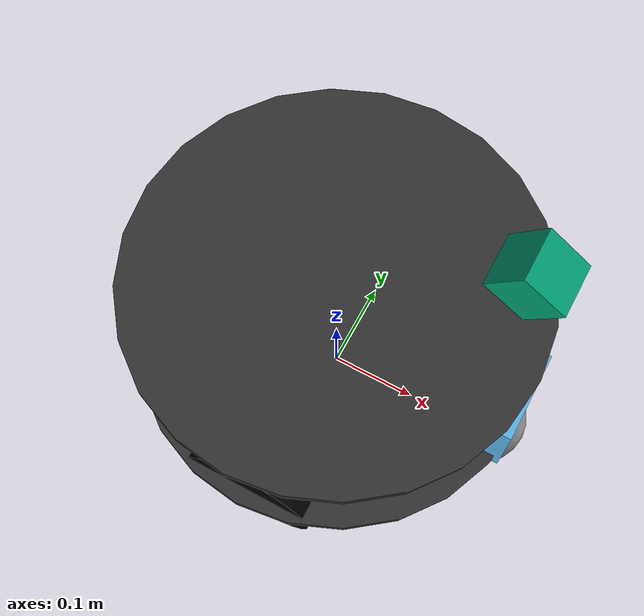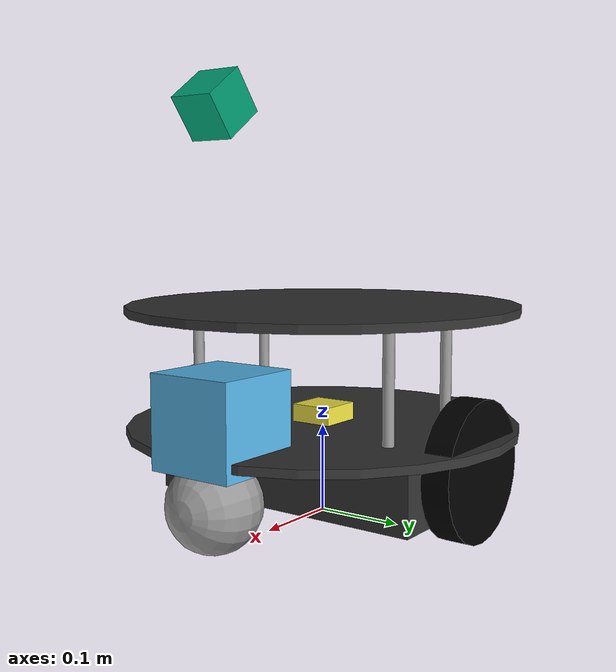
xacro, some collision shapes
<?xml version="1.0"?>
<robot name="arlobot" xmlns:xacro="http://ros.org/wiki/xacro">

  <xacro:property name="M_PI" value="3.1415926535897931"/>

  <!-- Loading config for arlo and all sensors -->

  <xacro:include filename="$(find Simulation)/urdf/camera.urdf.xacro"/>
  <xacro:include filename="$(find Simulation)/urdf/lidar.urdf.xacro"/>
  <xacro:include filename="$(find Simulation)/urdf/imu.urdf.xacro"/>
  <xacro:include filename="$(find Simulation)/urdf/arlo_stack.urdf.xacro"/>

  <!-- ArloBot -->
  <xacro:arlobot/>

  <!--sensor init define parent frame here-->
  <xacro:lidar parent="base_link"/>
  <xacro:camera parent="base_link"/>
  <xacro:imu parent="base_link"/>

  <!-- sensor/actor plugins init -->
  <xacro:include filename="$(find Simulation)/urdf/arlobot.gazebo"/>

  <!--adding one additional plate-->
  <xacro:stack_circles parent="base_link"/>

</robot>

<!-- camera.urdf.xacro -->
<robot xmlns:xacro="http://ros.org/wiki/xacro">

	<xacro:property name="camera_angle" value="${45 *180/M_PI}" /><!--angle measured from horizontal downwards-->
	<xacro:property name="camera_hight" value="${0.45-0.10125}" /><!--since this is relative to the base_link we have to substract 0.10125 from the hight we want-->
	<xacro:property name="camera_xoffset" value="0.18" />

	<xacro:macro name="camera" params="parent">

		<!-- Camera -->
		<link name="camera_link">
			<collision>
				<origin xyz="0 0 0" rpy="0 0 0"/>
			    <geometry>
					<box size="0.05 0.05 0.05"/>
			  	</geometry>
			</collision>
			<visual>
			    <origin xyz="0 0 0" rpy="0 0 0"/>
			    <geometry>
					<box size="0.05 0.05 0.05"/>
			    </geometry>
			</visual>
			<inertial>
			    <mass value="1e-5" />
			    <origin xyz="0 0 0" rpy="0 0 0"/>
			    <inertia ixx="1e-6" ixy="0" ixz="0" iyy="1e-6" iyz="0" izz="1e-6" />
			</inertial>
		</link>

		<joint name="camera_joint" type="fixed">
			<axis xyz="0 1 0" />
		    <origin xyz="${camera_xoffset} 0 ${camera_hight}" rpy="0 ${camera_angle} 0"/>
		    <parent link="${parent}"/>
		    <child link="camera_link"/>
		</joint>
	</xacro:macro>

</robot>

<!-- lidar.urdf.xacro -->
<robot xmlns:xacro="http://ros.org/wiki/xacro">

	<xacro:property name="lidar_xoffset" value="0.175" />
	<xacro:property name="lidar_yoffset" value="0" />
	<xacro:property name="lidar_zoffset" value="${0+0.035}" /> <!--since we want it to be on top of the baseplate-->

	<xacro:property name="camera_xoffset" value="0.18" />

	<xacro:macro name="lidar" params="parent">
		<link name="hokuyo_link">

		  <collision>
		    <origin xyz="0 0 0" rpy="0 0 0"/>
		    <geometry>
		      <box size="0.1 0.1 0.1"/>
		    </geometry>
		  </collision>

		  <visual>
		    <origin xyz="0 0 0" rpy="0 0 0"/>
		    <geometry>
		      <mesh filename="package://Simulation/meshes/hokuyo.dae"/>
		    </geometry>
		  </visual>

		  <inertial>
		    <mass value="1e-5" />
		    <origin xyz="0 0 0" rpy="0 0 0"/>
		    <inertia ixx="1e-6" ixy="0" ixz="0" iyy="1e-6" iyz="0" izz="1e-6" />
		  </inertial>

		</link>

		<joint name="hokuyo_joint" type="fixed">
		  <axis xyz="0 0 0" />
		  <origin xyz="${lidar_xoffset} ${lidar_yoffset} ${lidar_zoffset}" rpy="0 0 0"/>
		  <parent link="${parent}"/>
		  <child link="hokuyo_link"/>
		</joint>
    </xacro:macro>

</robot>

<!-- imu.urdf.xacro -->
<robot xmlns:xacro="http://ros.org/wiki/xacro">

	<xacro:property name="imu_xoffset" value="0" />
	<xacro:property name="imu_yoffset" value="0" />
	<xacro:property name="imu_zoffset" value="0" />

	<xacro:macro name="imu" params="parent">
	  	<link name="imu_link">

	      <collision>
	        <origin xyz="0 0 0" rpy="0 0 0"/>
	        <geometry>
	          <box size="0.1 0.1 0.1"/>
	        </geometry>
	      </collision>

	      <visual>
	        <origin xyz="0 0 0" rpy="0 0 0"/>
	        <geometry>
	          <box size="0.05 0.05 0.05"/>
	        </geometry>
	      </visual>

	      <inertial>
	        <mass value="1e-5" />
	        <origin xyz="0 0 0" rpy="0 0 0"/>
	        <inertia ixx="1e-6" ixy="0" ixz="0" iyy="1e-6" iyz="0" izz="1e-6" />
	      </inertial>

	    </link>

	    <joint name="imu_joint" type="fixed">
	      <axis xyz="0 0 0" />
	      <origin xyz="${imu_xoffset} ${imu_yoffset} ${imu_zoffset}" rpy="0 0 0"/>
	      <parent link="${parent}"/>
	      <child link="imu_link"/>
	    </joint>
    </xacro:macro>

</robot>

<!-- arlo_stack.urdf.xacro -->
<robot name="arlobot_hardware" xmlns:xacro="http://ros.org/wiki/xacro">

  <!-- Macro for ArloBot body. -->

  <xacro:property name="base_x" value="0.33"/>
  <xacro:property name="base_y" value="0.33"/>

  <xacro:macro name="arlobot">
    <material name="black">
      <color rgba="0.0 0.0 0.0 1.0"/>
    </material>
    <material name="Green">
      <color rgba="0.0 0.8 0.0 1.0"/>
    </material>
    <material name="veryDarkGrey">
      <color rgba=".2 .2 .2 1"/>
    </material>
    <material name="light_grey">
      <color rgba="0.6 0.6 0.6 1"/>
    </material>

    <!-- base_footprint is a fictitious link(frame) that is on the ground right below base_link origin, navigation stack depends on this frame -->
    <link name="base_footprint">
      <visual>
        <origin xyz="0 0 0" rpy="0 0 0"/>
        <geometry>
          <box size="0.001 0.001 0.001"/>
        </geometry>
        <material name="Green"/>
      </visual>

      <collision>
        <origin xyz="0 0 0.017" rpy="0 0 0"/>
        <geometry>
          <box size="0.001 0.001 0.001"/>
        </geometry>
      </collision>
    </link>

    <link name="base_link">
      <inertial>
        <mass value="2"/>
        <origin xyz="0 0 0.0"/>
        <inertia ixx="0.01" ixy="0.0" ixz="0.0"
                 iyy="0.01" iyz="0.0" izz="0.5"/>
      </inertial>

      <visual>
        <origin xyz="0 0 0" rpy="0 0 0"/>
        <geometry>
          <cylinder length="0.0095" radius="0.2245"/>
        </geometry>
        <material name="veryDarkGrey"/>
      </visual>

      <collision>
        <origin xyz="0 0 0" rpy="0 0 0"/>
        <geometry>
          <cylinder length="0.0095" radius="0.2245"/>
        </geometry>
      </collision>
    </link>

    <link name="battery_box">
      <inertial>
        <mass value="0.001"/>
        <origin xyz="0 0 0"/>
        <inertia ixx="0.0001" ixy="0.0" ixz="0.0"
                 iyy="0.0001" iyz="0.0"
                 izz="0.0001"/>
      </inertial>

      <visual>
        <origin xyz="0 0 0" rpy="0 0 0"/>
        <geometry>
          <box size="0.1778 0.3366 0.0762"/>
        </geometry>
        <material name="veryDarkGrey"/>
      </visual>

      <collision>
        <origin xyz="0 0 0" rpy="0 0 0"/>
        <geometry>
          <box size="0.1778 0.3366 0.0762"/>
        </geometry>
      </collision>
    </link>

    <joint name="battery_box_joint" type="fixed">
      <origin xyz="0 0 -0.04285" rpy="0 0 0"/>
      <parent link="base_link"/>
      <child link="battery_box"/>
    </joint>

    <link name="front_caster">
      <inertial>
        <mass value="0.001"/>
        <origin xyz="0 0 0"/>
        <inertia ixx="0.0001" ixy="0.0" ixz="0.0"
                 iyy="0.0001" iyz="0.0"
                 izz="0.0001"/>
      </inertial>

      <visual>

        <origin xyz="0 0.02 0.050625" rpy="${-M_PI/2} 0 ${M_PI/2}"/>
        <geometry>
          <mesh filename="package://Simulation/meshes/28971-Caster-Wheel-Kit-v1.0_simplified.stl"/>
        </geometry>
        <material name="light_grey">
          <color rgba="0.6 0.6 0.6 1"/>
        </material>
      </visual>
      <collision>
        <origin xyz="0 0.02 0" rpy="${-M_PI/2} 0 ${M_PI/2}"/>
        <geometry>
    	  <sphere radius="0.050625"/>
        </geometry>
        <material name="light_grey">
          <color rgba="0.6 0.6 0.6 1"/>
        </material>

      </collision>
    </link>

    <joint name="front_caster_joint" type="continuous">
      <axis xyz="0 0 1" rpy="0 0 0" />
      <origin xyz="0.18745 -0.02 -0.050625" rpy="0 0 0"/>
      <parent link="base_link"/>
      <child link="front_caster"/>
    </joint>

    <link name="rear_caster">
      <inertial>
        <mass value="0.001"/>
        <origin xyz="0 0 0"/>
        <inertia ixx="0.0001" ixy="0.0" ixz="0.0"
                 iyy="0.0001" iyz="0.0"
                 izz="0.0001"/>
      </inertial>

      <visual>

        <origin xyz="0 0.02 0.050625" rpy="${-M_PI/2} 0 ${M_PI/2}"/>
        <geometry>
          <mesh filename="package://Simulation/meshes/28971-Caster-Wheel-Kit-v1.0_simplified.stl"/>
        </geometry>
        <material name="light_grey">
          <color rgba="0.6 0.6 0.6 1"/>
        </material>
      </visual>
      <collision>
        <origin xyz="0 0.02 0" rpy="${-M_PI/2} 0 ${M_PI/2}"/>
        <geometry>
    	  <sphere radius="0.050625"/>
        </geometry>
        <material name="light_grey">
          <color rgba="0.6 0.6 0.6 1"/>
        </material>

      </collision>
    </link>

    <joint name="rear_caster_joint" type="continuous">
      <axis xyz="0 0 1" rpy="0 0 0" />
      <origin xyz="-0.18745 -0.02 -0.050625" rpy="0 0 0"/>
      <parent link="base_link"/>
      <child link="rear_caster"/>
    </joint>

    <joint name="base_footprint_joint" type="fixed">
      <origin xyz="0 0 0.10125" rpy="0 0 0"/>
      <parent link="base_footprint"/>
      <child link="base_link"/>
    </joint>

    <link name="left_axle_link">
      <inertial>
        <origin xyz="0 0 0"/>
        <mass value="0.01"/>
        <inertia ixx="0.001" ixy="0.0" ixz="0.0"
                 iyy="0.001" iyz="0.0" izz="0.001"/>
      </inertial>

      <visual>
        <origin xyz="0 0 0" rpy="0 ${M_PI/2} ${M_PI/2}"/>
        <geometry>
          <cylinder radius="0.00635" length="0.00635"/>
        </geometry>
        <material name="light_grey"/>
      </visual>

      <collision>
        <origin xyz="0 0 0" rpy="0 ${M_PI/2} ${M_PI/2}"/>
        <geometry>
          <cylinder radius="0.00635" length="0.00635"/>
        </geometry>
      </collision>
    </link>

    <joint name="left_axle_joint" type="fixed">
      <origin xyz="0 0.171475 0.0178" rpy="0 0 0"/>
      <parent link="battery_box"/>
      <child link="left_axle_link"/>
      <axis xyz="0 1 0"/>
    </joint>

    <link name="right_axle_link">
      <inertial>
        <origin xyz="0 0 0"/>
        <mass value="0.01"/>
        <inertia ixx="0.001" ixy="0.0" ixz="0.0"
                 iyy="0.001" iyz="0.0" izz="0.001"/>
      </inertial>

      <visual>
        <origin xyz="0 0 0" rpy="0 ${M_PI/2} ${M_PI/2}"/>
        <geometry>
          <cylinder radius="0.00635" length="0.00635"/>
        </geometry>
        <material name="light_grey"/>
      </visual>

      <collision>
        <origin xyz="0 0 0" rpy="0 ${M_PI/2} ${M_PI/2}"/>
        <geometry>
          <cylinder radius="0.00635" length="0.00635"/>
        </geometry>
      </collision>
    </link>

    <joint name="right_axle_joint" type="fixed">
      <origin xyz="0 -0.171475 0.0178" rpy="0 0 0"/>
      <parent link="battery_box"/>
      <child link="right_axle_link"/>
      <axis xyz="0 1 0"/>
    </joint>

    <link name="left_wheel_link">
      <inertial>
        <origin xyz="0 0 0"/>
        <mass value="0.01"/>
        <inertia ixx="0.001" ixy="0.0" ixz="0.0"
                 iyy="0.001" iyz="0.0" izz="0.001"/>
      </inertial>

      <visual>
        <origin xyz="0 0 0" rpy="0 ${M_PI/2} ${M_PI/2}"/>
        <geometry>
          <cylinder radius="0.0762" length="0.03175"/>
        </geometry>
        <material name="black"/>
      </visual>

      <collision>
        <origin xyz="0 0 0" rpy="0 ${M_PI/2} ${M_PI/2}"/>
        <geometry>
          <cylinder radius="0.0762" length="0.03175"/>
        </geometry>
        <surface>
	        <friction>
	          <ode>
	            <mu>100.00</mu>
	            <mu2>50.00</mu2>
	          </ode>
	        </friction>
        </surface>
      </collision>
    </link>

    <!-- Fixed because we never rotate it anyway, it is just for show -->
    <!-- NOTE This may prevent gazebo from working with this model -->
    <joint name="left_wheel_joint" type="continuous">
      <origin xyz="0 0.01905 0" rpy="0 0 0"/>
      <parent link="left_axle_link"/>
      <child link="left_wheel_link"/>
      <axis xyz="0 1 0" rpy="0 0 0"/>
      <joint_properties damping="0.0" friction="0.0"/>
    </joint>

    <link name="right_wheel_link">
      <inertial>
        <origin xyz="0 0 0"/>
        <mass value="0.01"/>
        <inertia ixx="0.001" ixy="0.0" ixz="0.0"
                 iyy="0.001" iyz="0.0" izz="0.001"/>
      </inertial>

      <visual>
        <origin xyz="0 0 0" rpy="0 ${M_PI/2} ${M_PI/2}"/>
        <geometry>
          <cylinder radius="0.0762" length="0.03175"/>
        </geometry>
        <material name="black"/>
      </visual>

      <collision>
        <origin xyz="0 0 0" rpy="0 ${M_PI/2} ${M_PI/2}"/>
        <geometry>
          <cylinder radius="0.0762" length="0.03175"/>
        </geometry>
        <surface>
	        <friction>
	          <ode>
	            <mu>100.00</mu>
	            <mu2>50.00</mu2>
	          </ode>
	        </friction>
        </surface>
      </collision>

    </link>

    <!-- Fixed because we never rotate it anyway, it is just for show -->
    <!-- NOTE This may prevent gazebo from working with this model -->
    <joint name="right_wheel_joint" type="continuous">
      <origin xyz="0 -0.01905 0" rpy="0 0 0"/>
      <parent link="right_axle_link"/>
      <child link="right_wheel_link"/>
      <axis xyz="0 1 0" rpy="0 0 0"/>
      <joint_properties damping="0.0" friction="0.0"/>
    </joint>

  </xacro:macro>

  <xacro:macro name="arlobot_standoff_5in" params="parent number x_loc y_loc z_loc">
    <joint name="standoff_5in_${number}_joint" type="fixed">
      <origin xyz="${x_loc} ${y_loc} ${z_loc}" rpy="0 0 0"/>
      <parent link="${parent}"/>
      <child link="standoff_5in_${number}_link"/>
    </joint>

    <link name="standoff_5in_${number}_link">
      <inertial>
        <mass value="0.001"/>
        <origin xyz="0 0 0"/>
        <inertia ixx="0.0001" ixy="0.0" ixz="0.0"
                 iyy="0.0001" iyz="0.0"
                 izz="0.0001"/>
      </inertial>

      <visual>
        <origin xyz=" 0 0 0 " rpy="0 0 0"/>
        <geometry>
          <cylinder length="0.127" radius="0.00635"/>
        </geometry>
        <material name="light_grey">
          <color rgba="0.6 0.6 0.6 1"/>
        </material>
      </visual>

      <collision>
        <origin xyz="0.0 0.0 0.0" rpy="0 0 0"/>
        <geometry>
          <cylinder length="0.127" radius="0.00635"/>
        </geometry>
      </collision>
    </link>
  </xacro:macro>

  <xacro:macro name="stack_circles" params="parent">
    <joint name="plate_0_joint" type="fixed">
      <origin xyz="0 0 0.1365" rpy="0 0 0"/>
      <parent link="${parent}"/>
      <child link="plate_0_link"/>
    </joint>

    <link name="plate_0_link">
      <inertial>
        <mass value="0.01"/>
        <origin xyz="0 0 0"/>
        <inertia ixx="0.01" ixy="0.0" ixz="0.0"
                 iyy="0.01" iyz="0.0"
                 izz="0.01"/>
      </inertial>

      <visual>
        <origin xyz=" 0 0 0 " rpy="0 0 0"/>
        <geometry>
          <cylinder length="0.0095" radius="0.2245"/>
        </geometry>
        <material name="veryDarkGrey">
          <color rgba=".2 .2 .2 1"/>
        </material>
      </visual>

      <collision>
        <origin xyz="0.0 0.0 0.0" rpy="0 0 0"/>
        <geometry>
          <cylinder length="0.0095" radius="0.2245"/>
        </geometry>
      </collision>
    </link>

    <xacro:arlobot_standoff_5in parent="${parent}" number="0" x_loc="0.0676402" y_loc="0.1314196"
                          z_loc="0.06825"/>
    <xacro:arlobot_standoff_5in parent="${parent}" number="1" x_loc="0.0676402" y_loc="-0.1314196"
                          z_loc="0.06825"/>
    <xacro:arlobot_standoff_5in parent="${parent}" number="2" x_loc="-0.052832" y_loc="-0.1314196"
                          z_loc="0.06825"/>
    <xacro:arlobot_standoff_5in parent="${parent}" number="3" x_loc="-0.052832" y_loc="0.1314196"
                          z_loc="0.06825"/>

  </xacro:macro>
</robot>
